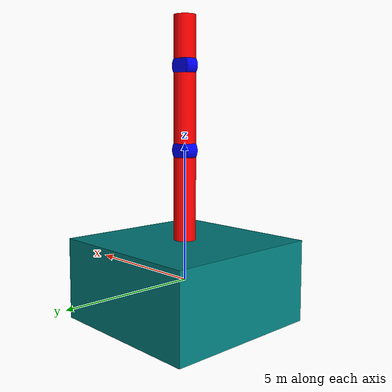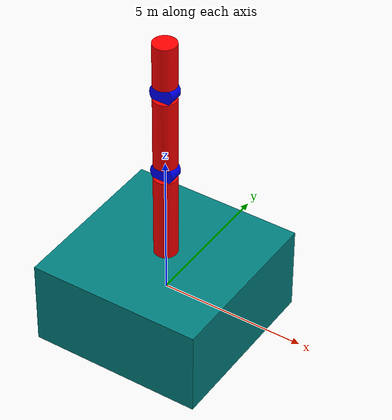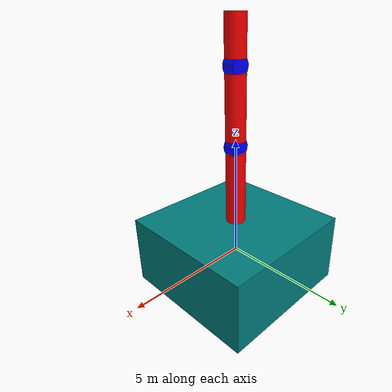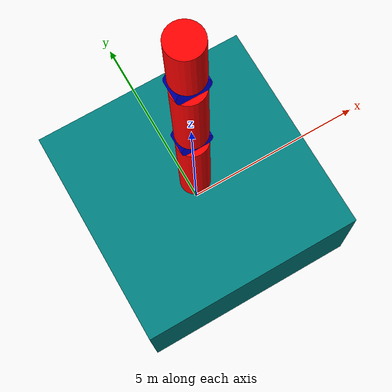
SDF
<?xml version="1.0" ?>
<!-- Inspired by Gazebo tutorial https://gazebosim.org/docs/harmonic/tutorials/-->
<sdf version="1.8">
    <model name="finger" canonical_link='platform'>
        <pose>
            0 0 0 0 0 0
        </pose>
        <link name='platform'>
            <inertial>
                <mass>20</mass>
                <inertia>
                    <ixx>60</ixx>
                    <ixy>0</ixy>
                    <ixz>0</ixz>
                    <iyy>60</iyy>
                    <iyz>0</iyz>
                    <izz>120</izz>
                </inertia>
            </inertial>
            <visual name='visual'>
                <geometry>
                    <box>
                        <size>6.0 6.0 3.0</size>
                    </box>
                </geometry>
                <!--let's add color to our link
                    red/gree/blue/alpha-->
                <material>
                    <ambient>0.0 0.5 0.5 1</ambient>
                    <diffuse>0.0 0.5 0.5 1</diffuse>
                    <specular>0.0 0.5 0.5 1</specular>
                </material>
            </visual>
            <collision name='collision'>
                <geometry>
                    <box>
                        <size>6.0 6.0 3.0</size>
                    </box>
                </geometry>
                <!-- Necessary to keep platform on ground-->
                <surface>
                    <contact>
                      <ode>
                        <kp>1e16</kp>
                        <kd>100.0</kd>
                        <max_vel>1000.0</max_vel>
                        <min_depth>0.001</min_depth>
                      </ode>
                    </contact>
                    <friction>
                      <ode>
                        <mu>1.5</mu>
                        <mu2>1.5</mu2>
                      </ode>
                    </friction>
                  </surface>
            </collision>
        </link>
        <!-- base_segment-->
        <link name='base_segment'>
            <pose relative_to="platform">0 0 3 0 0 0</pose>
            <inertial>
                <mass>2</mass>
                <inertia>
                    <ixx>1.58</ixx>
                    <ixy>0</ixy>
                    <ixz>0</ixz>
                    <iyy>1.58</iyy>
                    <iyz>0</iyz>
                    <izz>0.16</izz>
                </inertia>
            </inertial>
            <visual name='visual'>
                <geometry>
                    <cylinder>
                        <radius>0.4</radius>
                        <length>3</length>
                    </cylinder>
                </geometry>
                <material>
                    <ambient>1.0 0.0 0.0 1</ambient>
                    <diffuse>1.0 0.0 0.0 1</diffuse>
                    <specular>1.0 0.0 0.0 1</specular>
                </material>
            </visual>
            <collision name='collision'>
                <geometry>
                    <cylinder>
                        <radius>0.4</radius>
                        <length>3</length>
                    </cylinder>
                </geometry>
            </collision>
        </link>
        <!-- mid_segment-->
        <link name='lower_joint'>
            <pose relative_to="base_segment">0 0 1.75 -1.5707 0 0</pose><!-- z=len(base_segment)/2+len(lower_joint)/2-->
            <inertial>
                <mass>0.5</mass>
                <inertia>
                    <ixx>0.030417</ixx>
                    <ixy>0</ixy>
                    <ixz>0</ixz>
                    <iyy>0.030417</iyy>
                    <iyz>0</iyz>
                    <izz>0.04</izz>
                </inertia>
            </inertial>
            <visual name='visual'>
                <geometry>
                    <cylinder>
                        <radius>0.4</radius>
                        <length>0.5</length>
                    </cylinder>
                </geometry>
                <material>
                    <ambient>0.0 0.0 1.0 1</ambient>
                    <diffuse>0.0 0.0 1.0 1</diffuse>
                    <specular>0.0 0.0 1.0 1</specular>
                </material>
            </visual>
            <collision name='collision'>
                <geometry>
                    <cylinder>
                        <radius>0.4</radius>
                        <length>0.5</length>
                    </cylinder>
                </geometry>
            </collision>
        </link>
        <link name='mid_segment'>
            <pose relative_to="base_segment">0 0 3.25 0 0 0</pose>
            <inertial>
                <mass>1.5</mass>
                <inertia>
                    <ixx>0.84125</ixx>
                    <ixy>0</ixy>
                    <ixz>0</ixz>
                    <iyy>0.84125</iyy>
                    <iyz>0</iyz>
                    <izz>0.12</izz>
                </inertia>
            </inertial>
            <visual name='visual'>
                <geometry>
                    <cylinder>
                        <radius>0.4</radius>
                        <length>2.5</length>
                    </cylinder>
                </geometry>
                <material>
                    <ambient>1.0 0.0 0.0 1</ambient>
                    <diffuse>1.0 0.0 0.0 1</diffuse>
                    <specular>1.0 0.0 0.0 1</specular>
                </material>
            </visual>
            <collision name='collision'>
                <geometry>
                    <cylinder>
                        <radius>0.4</radius>
                        <length>2.5</length>
                    </cylinder>
                </geometry>
            </collision>
        </link>
        <!-- upper_segment-->
        <link name='upper_joint'>
            <pose relative_to="mid_segment">0 0 1.5 -1.5707 0 0</pose><!-- z=len(mid_segment)/2+len(upper_joint)/2-->
            <inertial>
                <mass>0.5</mass>
                <inertia>
                    <ixx>0.030417</ixx>
                    <ixy>0</ixy>
                    <ixz>0</ixz>
                    <iyy>0.030417</iyy>
                    <iyz>0</iyz>
                    <izz>0.04</izz>
                </inertia>
            </inertial>
            <visual name='visual'>
                <geometry>
                    <cylinder>
                        <radius>0.4</radius>
                        <length>0.5</length>
                    </cylinder>
                </geometry>
                <material>
                    <ambient>0.0 0.0 1.0 1</ambient>
                    <diffuse>0.0 0.0 1.0 1</diffuse>
                    <specular>0.0 0.0 1.0 1</specular>
                </material>
            </visual>
            <collision name='collision'>
                <geometry>
                    <cylinder>
                        <radius>0.4</radius>
                        <length>0.5</length>
                    </cylinder>
                </geometry>
            </collision>
        </link>
        <link name='upper_segment'>
            <pose relative_to="mid_segment">0 0 2.5 0 0 0</pose>
            <inertial>
                <mass>1</mass>
                <inertia>
                    <ixx>0.2275</ixx>
                    <ixy>0</ixy>
                    <ixz>0</ixz>
                    <iyy>0.2275</iyy>
                    <iyz>0</iyz>
                    <izz>0.08</izz>
                </inertia>
            </inertial>
            <visual name='visual'>
                <geometry>
                    <cylinder>
                        <radius>0.4</radius>
                        <length>1.5</length>
                    </cylinder>
                </geometry>
                <material>
                    <ambient>1.0 0.0 0.0 1</ambient>
                    <diffuse>1.0 0.0 0.0 1</diffuse>
                    <specular>1.0 0.0 0.0 1</specular>
                </material>
            </visual>
            <collision name='collision'>
                <geometry>
                    <cylinder>
                        <radius>0.4</radius>
                        <length>1.5</length>
                    </cylinder>
                </geometry>
            </collision>
        </link>

        <!-- joints-->
        <joint name='platform_base_joint' type='fixed'>
            <pose relative_to='base_segment'/>
            <parent>platform</parent>
            <child>base_segment</child>
        </joint>

        <joint name='base_lower_joint' type='revolute'>
            <pose relative_to='lower_joint'/>
            <parent>base_segment</parent>
            <child>lower_joint</child>
            <axis>
                <xyz expressed_in='__model__'>0 1 0</xyz> <!--can be defined as any frame or even arbitrary frames-->
                <limit> <!--angle limits in radians-->
                    <lower>-1.79769e+308</lower>    <!--negative infinity-->
                    <upper>1.79769e+308</upper>     <!--positive infinity-->
                </limit>
            </axis>
        </joint>

        <joint name='lower_mid_joint' type='fixed'>
            <pose relative_to='mid_segment'/>
            <parent>lower_joint</parent>
            <child>mid_segment</child>
        </joint>

        <joint name='mid_upper_joint' type='revolute'>
            <pose relative_to='upper_joint'/>
            <parent>mid_segment</parent>
            <child>upper_joint</child>
            <axis>
                <xyz expressed_in='__model__'>0 1 0</xyz> <!--can be defined as any frame or even arbitrary frames. Rotates in y direction.-->
                <limit> <!--angle limits in radians (partly relative to current roation)-->
                    <lower>-1.79769e+308</lower>    <!--negative infinity-->
                    <upper>1.79769e+308</upper>     <!--positive infinity-->
                </limit>
            </axis>
        </joint>

        <joint name='upper_upper_joint' type='fixed'>
            <pose relative_to='mid_segment'/>
            <parent>upper_joint</parent>
            <child>upper_segment</child>
        </joint>

        <!-- plugin should be attached to a model-->
        <!-- By default, publishes to /model/finger/joint/base_lower_joint/cmd_vel-->
        <plugin
            filename="gz-sim-joint-controller-system"
            name="gz::sim::systems::JointController">
            <joint_name>base_lower_joint</joint_name>
            <initial_velocity>0.0</initial_velocity>
        </plugin>
        <!-- By default, publishes to /model/finger/joint/mid_upper_joint/cmd_vel-->
        <plugin
            filename="gz-sim-joint-controller-system"
            name="gz::sim::systems::JointController">
            <joint_name>mid_upper_joint</joint_name>
            <initial_velocity>0.0</initial_velocity>
        </plugin>

        <!-- By default, publishes to /world/world_plain/model/finger/joint_state-->
        <plugin
            filename="gz-sim-joint-state-publisher-system"
            name="gz::sim::systems::JointStatePublisher">
            <joint_name>mid_upper_joint</joint_name>
            <topic>/model/finger/joint/mid_upper_joint/joint_state</topic>
        </plugin>

        <!-- By default, publishes to /world/world_plain/model/finger/joint_state-->
        <plugin
            filename="gz-sim-joint-state-publisher-system"
            name="gz::sim::systems::JointStatePublisher">
            <joint_name>base_lower_joint</joint_name>
            <topic>/model/finger/joint/base_lower_joint/joint_state</topic>
        </plugin>

    </model>

</sdf>
